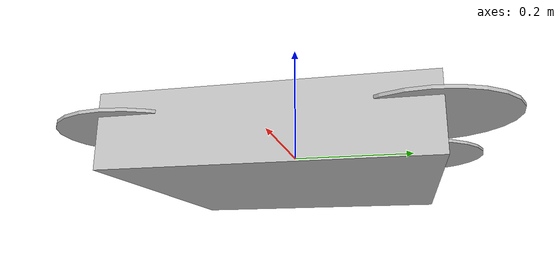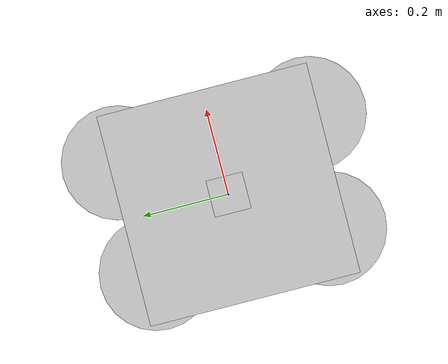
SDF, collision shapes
<?xml version='1.0'?>
<sdf version='1.5'>
  <model name='iris_fpv_cam'>

    <include>
      <uri>model://iris</uri>
    </include>

    <!-- camera -->
    <include>
      <uri>model://camera</uri>
      <pose>0 0 0.05 0 1.5708 0</pose>
    </include>
    <joint name="fpv_cam_joint" type="fixed">
      <child>camera::link</child>
      <parent>iris::base_link</parent>
      <axis>
        <xyz>0 0 1</xyz>
        <limit>
          <upper>0</upper>
          <lower>0</lower>
        </limit>
      </axis>
    </joint>

    <!-- lidar -->
    <include>
      <uri>model://lidar</uri>
      <pose>0 0 -0.02 0 0 0</pose>
    </include>

    <joint name="lidar_joint" type="fixed">
      <parent>iris::base_link</parent>
      <child>lidar::link</child>
    </joint>

  </model>
</sdf>

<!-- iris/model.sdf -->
<!-- DO NOT EDIT: Generated from iris.sdf.jinja -->
<sdf version='1.6'>
  <model name='iris'>
    <link name='base_link'>
      <pose>0 0 0 0 0 0</pose>
      <inertial>
        <pose>0 0 0 0 0 0</pose>
        <mass>1.5</mass>
        <inertia>
          <ixx>0.029125</ixx>
          <ixy>0</ixy>
          <ixz>0</ixz>
          <iyy>0.029125</iyy>
          <iyz>0</iyz>
          <izz>0.055225</izz>
        </inertia>
      </inertial>
      <collision name='base_link_inertia_collision'>
        <pose>0 0 0 0 0 0</pose>
        <geometry>
          <box>
            <size>0.47 0.47 0.11</size>
          </box>
        </geometry>
        <surface>
          <contact>
            <ode>
              <min_depth>0.001</min_depth>
              <max_vel>0</max_vel>
            </ode>
          </contact>
          <friction>
            <ode/>
          </friction>
        </surface>
      </collision>
      <visual name='base_link_inertia_visual'>
        <pose>0 0 0 0 0 0</pose>
        <geometry>
          <mesh>
            <scale>1 1 1</scale>
            <uri>model://iris/meshes/iris.stl</uri>
          </mesh>
        </geometry>
      </visual>
      <gravity>1</gravity>
      <velocity_decay/>
    </link>
    <link name='/imu_link'>
      <pose>0 0 0 0 0 0</pose>
      <inertial>
        <pose>0 0 0 0 0 0</pose>
        <mass>0.015</mass>
        <inertia>
          <ixx>1e-05</ixx>
          <ixy>0</ixy>
          <ixz>0</ixz>
          <iyy>1e-05</iyy>
          <iyz>0</iyz>
          <izz>1e-05</izz>
        </inertia>
      </inertial>
    </link>
    <joint name='/imu_joint' type='revolute'>
      <child>/imu_link</child>
      <parent>base_link</parent>
      <axis>
        <xyz>1 0 0</xyz>
        <limit>
          <lower>0</lower>
          <upper>0</upper>
          <effort>0</effort>
          <velocity>0</velocity>
        </limit>
        <dynamics>
          <spring_reference>0</spring_reference>
          <spring_stiffness>0</spring_stiffness>
        </dynamics>
        <use_parent_model_frame>1</use_parent_model_frame>
      </axis>
    </joint>
    <link name='rotor_0'>
      <pose>0.13 -0.22 0.023 0 0 0</pose>
      <inertial>
        <pose>0 0 0 0 0 0</pose>
        <mass>0.005</mass>
        <inertia>
          <ixx>9.75e-07</ixx>
          <ixy>0</ixy>
          <ixz>0</ixz>
          <iyy>0.000273104</iyy>
          <iyz>0</iyz>
          <izz>0.000274004</izz>
        </inertia>
      </inertial>
      <collision name='rotor_0_collision'>
        <pose>0 0 0 0 0 0</pose>
        <geometry>
          <cylinder>
            <length>0.005</length>
            <radius>0.128</radius>
          </cylinder>
        </geometry>
        <surface>
          <contact>
            <ode/>
          </contact>
          <friction>
            <ode/>
          </friction>
        </surface>
      </collision>
      <visual name='rotor_0_visual'>
        <pose>0 0 0 0 0 0</pose>
        <geometry>
          <mesh>
            <scale>1 1 1</scale>
            <uri>model://iris/meshes/iris_prop_ccw.dae</uri>
          </mesh>
        </geometry>
      </visual>
      <gravity>1</gravity>
      <velocity_decay/>
    </link>
    <joint name='rotor_0_joint' type='revolute'>
      <child>rotor_0</child>
      <parent>base_link</parent>
      <axis>
        <xyz>0 0 1</xyz>
        <limit>
          <lower>-1e+16</lower>
          <upper>1e+16</upper>
        </limit>
        <dynamics>
          <spring_reference>0</spring_reference>
          <spring_stiffness>0</spring_stiffness>
        </dynamics>
        <use_parent_model_frame>1</use_parent_model_frame>
      </axis>
    </joint>
    <link name='rotor_1'>
      <pose>-0.13 0.2 0.023 0 0 0</pose>
      <inertial>
        <pose>0 0 0 0 0 0</pose>
        <mass>0.005</mass>
        <inertia>
          <ixx>9.75e-07</ixx>
          <ixy>0</ixy>
          <ixz>0</ixz>
          <iyy>0.000273104</iyy>
          <iyz>0</iyz>
          <izz>0.000274004</izz>
        </inertia>
      </inertial>
      <collision name='rotor_1_collision'>
        <pose>0 0 0 0 0 0</pose>
        <geometry>
          <cylinder>
            <length>0.005</length>
            <radius>0.128</radius>
          </cylinder>
        </geometry>
        <surface>
          <contact>
            <ode/>
          </contact>
          <friction>
            <ode/>
          </friction>
        </surface>
      </collision>
      <visual name='rotor_1_visual'>
        <pose>0 0 0 0 0 0</pose>
        <geometry>
          <mesh>
            <scale>1 1 1</scale>
            <uri>model://iris/meshes/iris_prop_ccw.dae</uri>
          </mesh>
        </geometry>
      </visual>
      <gravity>1</gravity>
      <velocity_decay/>
    </link>
    <joint name='rotor_1_joint' type='revolute'>
      <child>rotor_1</child>
      <parent>base_link</parent>
      <axis>
        <xyz>0 0 1</xyz>
        <limit>
          <lower>-1e+16</lower>
          <upper>1e+16</upper>
        </limit>
        <dynamics>
          <spring_reference>0</spring_reference>
          <spring_stiffness>0</spring_stiffness>
        </dynamics>
        <use_parent_model_frame>1</use_parent_model_frame>
      </axis>
    </joint>
    <link name='rotor_2'>
      <pose>0.13 0.22 0.023 0 0 0</pose>
      <inertial>
        <pose>0 0 0 0 0 0</pose>
        <mass>0.005</mass>
        <inertia>
          <ixx>9.75e-07</ixx>
          <ixy>0</ixy>
          <ixz>0</ixz>
          <iyy>0.000273104</iyy>
          <iyz>0</iyz>
          <izz>0.000274004</izz>
        </inertia>
      </inertial>
      <collision name='rotor_2_collision'>
        <pose>0 0 0 0 0 0</pose>
        <geometry>
          <cylinder>
            <length>0.005</length>
            <radius>0.128</radius>
          </cylinder>
        </geometry>
        <surface>
          <contact>
            <ode/>
          </contact>
          <friction>
            <ode/>
          </friction>
        </surface>
      </collision>
      <visual name='rotor_2_visual'>
        <pose>0 0 0 0 0 0</pose>
        <geometry>
          <mesh>
            <scale>1 1 1</scale>
            <uri>model://iris/meshes/iris_prop_cw.dae</uri>
          </mesh>
        </geometry>
      </visual>
      <gravity>1</gravity>
      <velocity_decay/>
    </link>
    <joint name='rotor_2_joint' type='revolute'>
      <child>rotor_2</child>
      <parent>base_link</parent>
      <axis>
        <xyz>0 0 1</xyz>
        <limit>
          <lower>-1e+16</lower>
          <upper>1e+16</upper>
        </limit>
        <dynamics>
          <spring_reference>0</spring_reference>
          <spring_stiffness>0</spring_stiffness>
        </dynamics>
        <use_parent_model_frame>1</use_parent_model_frame>
      </axis>
    </joint>
    <link name='rotor_3'>
      <pose>-0.13 -0.2 0.023 0 0 0</pose>
      <inertial>
        <pose>0 0 0 0 0 0</pose>
        <mass>0.005</mass>
        <inertia>
          <ixx>9.75e-07</ixx>
          <ixy>0</ixy>
          <ixz>0</ixz>
          <iyy>0.000273104</iyy>
          <iyz>0</iyz>
          <izz>0.000274004</izz>
        </inertia>
      </inertial>
      <collision name='rotor_3_collision'>
        <pose>0 0 0 0 0 0</pose>
        <geometry>
          <cylinder>
            <length>0.005</length>
            <radius>0.128</radius>
          </cylinder>
        </geometry>
        <surface>
          <contact>
            <ode/>
          </contact>
          <friction>
            <ode/>
          </friction>
        </surface>
      </collision>
      <visual name='rotor_3_visual'>
        <pose>0 0 0 0 0 0</pose>
        <geometry>
          <mesh>
            <scale>1 1 1</scale>
            <uri>model://iris/meshes/iris_prop_cw.dae</uri>
          </mesh>
        </geometry>
      </visual>
      <gravity>1</gravity>
      <velocity_decay/>
    </link>
    <joint name='rotor_3_joint' type='revolute'>
      <child>rotor_3</child>
      <parent>base_link</parent>
      <axis>
        <xyz>0 0 1</xyz>
        <limit>
          <lower>-1e+16</lower>
          <upper>1e+16</upper>
        </limit>
        <dynamics>
          <spring_reference>0</spring_reference>
          <spring_stiffness>0</spring_stiffness>
        </dynamics>
        <use_parent_model_frame>1</use_parent_model_frame>
      </axis>
    </joint>
    <plugin name='rosbag' filename='libgazebo_multirotor_base_plugin.so'>
      <robotNamespace/>
      <linkName>base_link</linkName>
      <rotorVelocitySlowdownSim>10</rotorVelocitySlowdownSim>
    </plugin>
    <plugin name='front_right_motor_model' filename='libgazebo_motor_model.so'>
      <robotNamespace/>
      <jointName>rotor_0_joint</jointName>
      <linkName>rotor_0</linkName>
      <turningDirection>ccw</turningDirection>
      <timeConstantUp>0.0125</timeConstantUp>
      <timeConstantDown>0.025</timeConstantDown>
      <maxRotVelocity>1100</maxRotVelocity>
      <motorConstant>5.84e-06</motorConstant>
      <momentConstant>0.06</momentConstant>
      <commandSubTopic>/gazebo/command/motor_speed</commandSubTopic>
      <motorNumber>0</motorNumber>
      <rotorDragCoefficient>0.000175</rotorDragCoefficient>
      <rollingMomentCoefficient>1e-06</rollingMomentCoefficient>
      <motorSpeedPubTopic>/motor_speed/0</motorSpeedPubTopic>
      <rotorVelocitySlowdownSim>10</rotorVelocitySlowdownSim>
    </plugin>
    <plugin name='back_left_motor_model' filename='libgazebo_motor_model.so'>
      <robotNamespace/>
      <jointName>rotor_1_joint</jointName>
      <linkName>rotor_1</linkName>
      <turningDirection>ccw</turningDirection>
      <timeConstantUp>0.0125</timeConstantUp>
      <timeConstantDown>0.025</timeConstantDown>
      <maxRotVelocity>1100</maxRotVelocity>
      <motorConstant>5.84e-06</motorConstant>
      <momentConstant>0.06</momentConstant>
      <commandSubTopic>/gazebo/command/motor_speed</commandSubTopic>
      <motorNumber>1</motorNumber>
      <rotorDragCoefficient>0.000175</rotorDragCoefficient>
      <rollingMomentCoefficient>1e-06</rollingMomentCoefficient>
      <motorSpeedPubTopic>/motor_speed/1</motorSpeedPubTopic>
      <rotorVelocitySlowdownSim>10</rotorVelocitySlowdownSim>
    </plugin>
    <plugin name='front_left_motor_model' filename='libgazebo_motor_model.so'>
      <robotNamespace/>
      <jointName>rotor_2_joint</jointName>
      <linkName>rotor_2</linkName>
      <turningDirection>cw</turningDirection>
      <timeConstantUp>0.0125</timeConstantUp>
      <timeConstantDown>0.025</timeConstantDown>
      <maxRotVelocity>1100</maxRotVelocity>
      <motorConstant>5.84e-06</motorConstant>
      <momentConstant>0.06</momentConstant>
      <commandSubTopic>/gazebo/command/motor_speed</commandSubTopic>
      <motorNumber>2</motorNumber>
      <rotorDragCoefficient>0.000175</rotorDragCoefficient>
      <rollingMomentCoefficient>1e-06</rollingMomentCoefficient>
      <motorSpeedPubTopic>/motor_speed/2</motorSpeedPubTopic>
      <rotorVelocitySlowdownSim>10</rotorVelocitySlowdownSim>
    </plugin>
    <plugin name='back_right_motor_model' filename='libgazebo_motor_model.so'>
      <robotNamespace/>
      <jointName>rotor_3_joint</jointName>
      <linkName>rotor_3</linkName>
      <turningDirection>cw</turningDirection>
      <timeConstantUp>0.0125</timeConstantUp>
      <timeConstantDown>0.025</timeConstantDown>
      <maxRotVelocity>1100</maxRotVelocity>
      <motorConstant>5.84e-06</motorConstant>
      <momentConstant>0.06</momentConstant>
      <commandSubTopic>/gazebo/command/motor_speed</commandSubTopic>
      <motorNumber>3</motorNumber>
      <rotorDragCoefficient>0.000175</rotorDragCoefficient>
      <rollingMomentCoefficient>1e-06</rollingMomentCoefficient>
      <motorSpeedPubTopic>/motor_speed/3</motorSpeedPubTopic>
      <rotorVelocitySlowdownSim>10</rotorVelocitySlowdownSim>
    </plugin>
    <model name='gps0'>
      <link name='link'>
        <pose>0 0 0 0 0 0</pose>
        <inertial>
          <pose>0 0 0 0 0 0</pose>
          <mass>0.01</mass>
          <inertia>
            <ixx>2.1733e-06</ixx>
            <ixy>0</ixy>
            <ixz>0</ixz>
            <iyy>2.1733e-06</iyy>
            <iyz>0</iyz>
            <izz>1.8e-07</izz>
          </inertia>
        </inertial>
        <visual name='visual'>
          <geometry>
            <cylinder>
              <radius>0.01</radius>
              <length>0.002</length>
            </cylinder>
          </geometry>
        </visual>
        <sensor name='gps' type='gps'>
          <pose>0 0 0 0 0 0</pose>
          <plugin name='gps_plugin' filename='libgazebo_gps_plugin.so'>
            <robotNamespace/>
            <gpsNoise>1</gpsNoise>
            <gpsXYRandomWalk>2.0</gpsXYRandomWalk>
            <gpsZRandomWalk>4.0</gpsZRandomWalk>
            <gpsXYNoiseDensity>0.0002</gpsXYNoiseDensity>
            <gpsZNoiseDensity>0.0004</gpsZNoiseDensity>
            <gpsVXYNoiseDensity>0.2</gpsVXYNoiseDensity>
            <gpsVZNoiseDensity>0.4</gpsVZNoiseDensity>
          </plugin>
        </sensor>
      </link>
    </model>
    <joint name='gps0_joint' type='fixed'>
      <parent>base_link</parent>
      <child>gps0::link</child>
    </joint>
    <plugin name='groundtruth_plugin' filename='libgazebo_groundtruth_plugin.so'>
      <robotNamespace/>
    </plugin>
    <plugin name='magnetometer_plugin' filename='libgazebo_magnetometer_plugin.so'>
      <robotNamespace/>
      <pubRate>100</pubRate>
      <noiseDensity>0.0004</noiseDensity>
      <randomWalk>6.4e-06</randomWalk>
      <biasCorrelationTime>600</biasCorrelationTime>
      <magTopic>/mag</magTopic>
    </plugin>
    <plugin name='barometer_plugin' filename='libgazebo_barometer_plugin.so'>
      <robotNamespace/>
      <pubRate>50</pubRate>
      <baroTopic>/baro</baroTopic>
      <baroDriftPaPerSec>0</baroDriftPaPerSec>
    </plugin>
    <plugin name='mavlink_interface' filename='libgazebo_mavlink_interface.so'>
      <robotNamespace/>
      <imuSubTopic>/imu</imuSubTopic>
      <magSubTopic>/mag</magSubTopic>
      <baroSubTopic>/baro</baroSubTopic>
      <mavlink_addr>INADDR_ANY</mavlink_addr>
      <mavlink_tcp_port>{{ mavlink_tcp_port }}</mavlink_tcp_port>
      <mavlink_udp_port>{{ mavlink_udp_port }}</mavlink_udp_port>
      <serialEnabled>{{ serial_enabled }}</serialEnabled>
      <serialDevice>{{ serial_device }}</serialDevice>
      <baudRate>{{ serial_baudrate }}</baudRate>
      <qgc_addr>INADDR_ANY</qgc_addr>
      <qgc_udp_port>14550</qgc_udp_port>
      <sdk_addr>INADDR_ANY</sdk_addr>
      <sdk_udp_port>14540</sdk_udp_port>
      <hil_mode>{{ hil_mode }}</hil_mode>
      <hil_state_level>0</hil_state_level>
      <send_vision_estimation>0</send_vision_estimation>
      <send_odometry>1</send_odometry>
      <enable_lockstep>1</enable_lockstep>
      <use_tcp>1</use_tcp>
      <motorSpeedCommandPubTopic>/gazebo/command/motor_speed</motorSpeedCommandPubTopic>
      <control_channels>
        <channel name='rotor1'>
          <input_index>0</input_index>
          <input_offset>0</input_offset>
          <input_scaling>1000</input_scaling>
          <zero_position_disarmed>0</zero_position_disarmed>
          <zero_position_armed>100</zero_position_armed>
          <joint_control_type>velocity</joint_control_type>
        </channel>
        <channel name='rotor2'>
          <input_index>1</input_index>
          <input_offset>0</input_offset>
          <input_scaling>1000</input_scaling>
          <zero_position_disarmed>0</zero_position_disarmed>
          <zero_position_armed>100</zero_position_armed>
          <joint_control_type>velocity</joint_control_type>
        </channel>
        <channel name='rotor3'>
          <input_index>2</input_index>
          <input_offset>0</input_offset>
          <input_scaling>1000</input_scaling>
          <zero_position_disarmed>0</zero_position_disarmed>
          <zero_position_armed>100</zero_position_armed>
          <joint_control_type>velocity</joint_control_type>
        </channel>
        <channel name='rotor4'>
          <input_index>3</input_index>
          <input_offset>0</input_offset>
          <input_scaling>1000</input_scaling>
          <zero_position_disarmed>0</zero_position_disarmed>
          <zero_position_armed>100</zero_position_armed>
          <joint_control_type>velocity</joint_control_type>
        </channel>
        <channel name='rotor5'>
          <input_index>4</input_index>
          <input_offset>1</input_offset>
          <input_scaling>324.6</input_scaling>
          <zero_position_disarmed>0</zero_position_disarmed>
          <zero_position_armed>0</zero_position_armed>
          <joint_control_type>velocity</joint_control_type>
          <joint_control_pid>
            <p>0.1</p>
            <i>0</i>
            <d>0</d>
            <iMax>0.0</iMax>
            <iMin>0.0</iMin>
            <cmdMax>2</cmdMax>
            <cmdMin>-2</cmdMin>
          </joint_control_pid>
          <joint_name>zephyr_delta_wing::propeller_joint</joint_name>
        </channel>
        <channel name='rotor6'>
          <input_index>5</input_index>
          <input_offset>0</input_offset>
          <input_scaling>0.524</input_scaling>
          <zero_position_disarmed>0</zero_position_disarmed>
          <zero_position_armed>0</zero_position_armed>
          <joint_control_type>position</joint_control_type>
          <joint_name>zephyr_delta_wing::flap_left_joint</joint_name>
          <joint_control_pid>
            <p>10.0</p>
            <i>0</i>
            <d>0</d>
            <iMax>0</iMax>
            <iMin>0</iMin>
            <cmdMax>20</cmdMax>
            <cmdMin>-20</cmdMin>
          </joint_control_pid>
        </channel>
        <channel name='rotor7'>
          <input_index>6</input_index>
          <input_offset>0</input_offset>
          <input_scaling>0.524</input_scaling>
          <zero_position_disarmed>0</zero_position_disarmed>
          <zero_position_armed>0</zero_position_armed>
          <joint_control_type>position</joint_control_type>
          <joint_name>zephyr_delta_wing::flap_right_joint</joint_name>
          <joint_control_pid>
            <p>10.0</p>
            <i>0</i>
            <d>0</d>
            <iMax>0</iMax>
            <iMin>0</iMin>
            <cmdMax>20</cmdMax>
            <cmdMin>-20</cmdMin>
          </joint_control_pid>
        </channel>
        <channel name='rotor8'>
          <input_index>7</input_index>
          <input_offset>0</input_offset>
          <input_scaling>0.524</input_scaling>
          <zero_position_disarmed>0</zero_position_disarmed>
          <zero_position_armed>0</zero_position_armed>
          <joint_control_type>position</joint_control_type>
        </channel>
      </control_channels>
    </plugin>
    <static>0</static>
    <plugin name='rotors_gazebo_imu_plugin' filename='libgazebo_imu_plugin.so'>
      <robotNamespace/>
      <linkName>/imu_link</linkName>
      <imuTopic>/imu</imuTopic>
      <gyroscopeNoiseDensity>0.00018665</gyroscopeNoiseDensity>
      <gyroscopeRandomWalk>3.8785e-05</gyroscopeRandomWalk>
      <gyroscopeBiasCorrelationTime>1000.0</gyroscopeBiasCorrelationTime>
      <gyroscopeTurnOnBiasSigma>0.0087</gyroscopeTurnOnBiasSigma>
      <accelerometerNoiseDensity>0.00186</accelerometerNoiseDensity>
      <accelerometerRandomWalk>0.006</accelerometerRandomWalk>
      <accelerometerBiasCorrelationTime>300.0</accelerometerBiasCorrelationTime>
      <accelerometerTurnOnBiasSigma>0.196</accelerometerTurnOnBiasSigma>
    </plugin>
  </model>
</sdf>

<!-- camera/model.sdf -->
<sdf version="1.5">
    <model name="camera">
        <pose>-0.158979 -0.04405 0.045074 0 -0 0</pose>
        <link name='link'>
            <inertial>
            <mass>0.015</mass>
            <inertia>
                <ixx>4.15e-6</ixx>
            <ixy>0</ixy>
            <ixz>0</ixz>
            <iyy>2.407e-6</iyy>
            <iyz>0</iyz>
            <izz>2.407e-6</izz>
            </inertia>
            </inertial>
            <collision name='collision'>
            <geometry>
                <box>
                <size>0.01 0.01 0.01</size>
                </box>
            </geometry>
            <max_contacts>10</max_contacts>
            <surface>
                <contact>
                <ode/>
                </contact>
                <bounce/>
                <friction>
                <ode/>
                </friction>
            </surface>
            </collision>
            <visual name='visual'>
            <geometry>
                <box>
                <size>0.01 0.01 0.01</size>
                </box>
            </geometry>
            </visual>
            <sensor name="fps_camera" type="camera">
                <camera>
                    <horizontal_fov>1.57</horizontal_fov>
                    <image>
                        <width>1280</width>
                        <height>720</height>
                    </image>
                    <clip>
                        <near>0.1</near>
                        <far>100</far>
                    </clip>
                </camera>
                <always_on>1</always_on>
                <update_rate>60.0</update_rate>
                <visualize>true</visualize>
                <plugin name="camera_controller" filename="libgazebo_ros_camera.so">
                    <cameraInfoTopicName>camera_info</cameraInfoTopicName>
                    <cameraName>usb_cam</cameraName>
                    <frameName>camera_link</frameName>
                    <imageTopicName>image_raw</imageTopicName>
                    <robotNamespace></robotNamespace>
                </plugin>
            </sensor>
        </link>
    </model>
</sdf>

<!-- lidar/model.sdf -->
<sdf version='1.6'>
  <model name='lidar'>
    <link name='link'>
      <inertial>
        <mass>0.1</mass>
        <inertia>
          <ixx>0.17</ixx>
          <ixy>0.00</ixy>
          <ixz>0.00</ixz>
          <iyy>0.17</iyy>
          <iyz>0.00</iyz>
          <izz>0.17</izz>
        </inertia>
      </inertial>
      <pose frame=''>0 0 0 0 -0 0</pose>
      <visual name='visual'>
        <pose frame=''>0 0 0 0 -0 0</pose>
        <geometry>
          <mesh>
            <uri>model://laser_robot/lidar/meshes/lidar.obj</uri>
            <scale>1 1 1</scale>
          </mesh>
        </geometry>
        <transparency>0</transparency>
        <cast_shadows>1</cast_shadows>
      </visual>
      <collision name='collision'>
        <laser_retro>0</laser_retro>
        <max_contacts>10</max_contacts>
        <pose frame=''>0 0 0.05 0 -0 0</pose>
        <geometry>
          <mesh>
            <uri>model://laser_robot/lidar/meshes/lidar.obj</uri>
            <scale>1 1 1</scale>
          </mesh>
        </geometry>
        <surface>
          <friction>
            <ode>
              <mu>1</mu>
              <mu2>1</mu2>
              <fdir1>0 0 0</fdir1>
              <slip1>0</slip1>
              <slip2>0</slip2>
            </ode>
            <torsional>
              <coefficient>1</coefficient>
              <patch_radius>1</patch_radius>
              <surface_radius>1</surface_radius>
              <use_patch_radius>1</use_patch_radius>
              <ode>
                <slip>0</slip>
              </ode>
            </torsional>
          </friction>
          <bounce>
            <restitution_coefficient>1</restitution_coefficient>
            <threshold>1e+06</threshold>
          </bounce>
          <contact>
            <collide_without_contact>0</collide_without_contact>
            <collide_without_contact_bitmask>1</collide_without_contact_bitmask>
            <collide_bitmask>1</collide_bitmask>
            <ode>
              <soft_cfm>0</soft_cfm>
              <soft_erp>0.2</soft_erp>
              <kp>1e+13</kp>
              <kd>1</kd>
              <max_vel>0.01</max_vel>
              <min_depth>0</min_depth>
            </ode>
            <bullet>
              <split_impulse>1</split_impulse>
              <split_impulse_penetration_threshold>-0.01</split_impulse_penetration_threshold>
              <soft_cfm>0</soft_cfm>
              <soft_erp>0.2</soft_erp>
              <kp>1e+13</kp>
              <kd>1</kd>
            </bullet>
          </contact>
        </surface>
      </collision>
    </link>
    <static>0</static>
    <allow_auto_disable>1</allow_auto_disable>
  </model>
</sdf>
